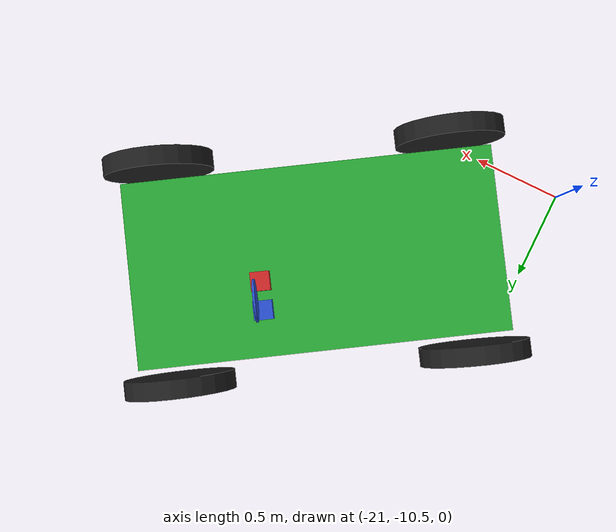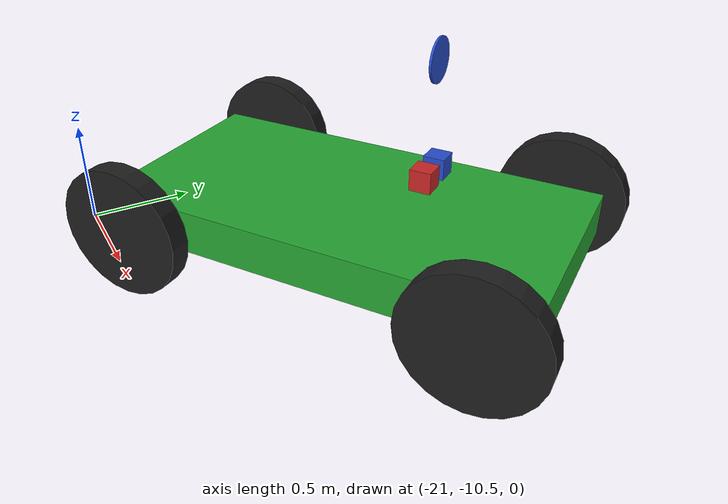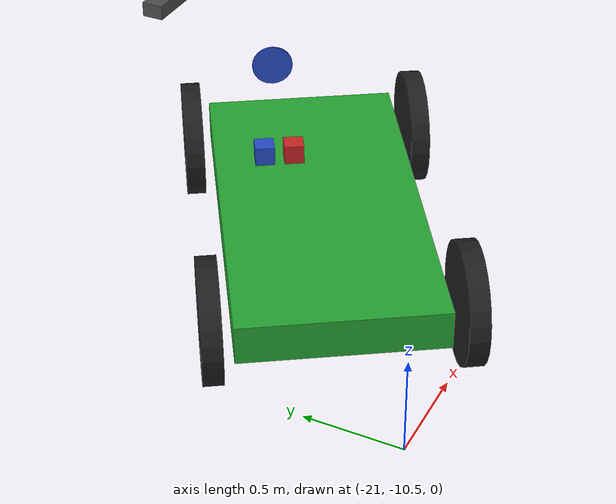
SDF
<sdf version="1.7">
 <world name="yolo_test_world">
  <model name="car">
   <link name="chassis">
    <pose>0 0 0.3 0 -0 0</pose>
    <collision name="collision"><geometry><box><size>2 1 0.2</size></box></geometry></collision>
    <visual name="visual">
     <geometry><box><size>2 1 0.2</size></box></geometry>
     <material>
      <script><uri>file://media/materials/scripts/gazebo.material</uri><name>Gazebo/Green</name></script>
     </material>
    </visual>
    <inertial>
     <inertia><ixx>1</ixx><ixy>0</ixy><ixz>0</ixz><iyy>1</iyy><iyz>0</iyz><izz>1</izz></inertia>
     <mass>1</mass>
    </inertial>
   </link>
   <link name="front_left_wheel">
    <pose>0.8 0.6 0.3 -0 1.5707 1.5707</pose>
    <collision name="collision">
     <geometry><cylinder><radius>0.3</radius><length>0.1</length></cylinder></geometry>
    </collision>
    <visual name="visual">
     <geometry><cylinder><radius>0.3</radius><length>0.1</length></cylinder></geometry>
     <material>
      <script><uri>file://media/materials/scripts/gazebo.material</uri><name>Gazebo/Black</name></script>
     </material>
    </visual>
    <inertial>
     <inertia><ixx>1</ixx><ixy>0</ixy><ixz>0</ixz><iyy>1</iyy><iyz>0</iyz><izz>1</izz></inertia>
     <mass>1</mass>
    </inertial>
   </link>
   <link name="front_right_wheel">
    <pose>0.8 -0.6 0.3 -0 1.5707 1.5707</pose>
    <collision name="collision">
     <geometry><cylinder><radius>0.3</radius><length>0.1</length></cylinder></geometry>
    </collision>
    <visual name="visual">
     <geometry><cylinder><radius>0.3</radius><length>0.1</length></cylinder></geometry>
     <material>
      <script><uri>file://media/materials/scripts/gazebo.material</uri><name>Gazebo/Black</name></script>
     </material>
    </visual>
    <inertial>
     <inertia><ixx>1</ixx><ixy>0</ixy><ixz>0</ixz><iyy>1</iyy><iyz>0</iyz><izz>1</izz></inertia>
     <mass>1</mass>
    </inertial>
   </link>
   <link name="back_right_wheel">
    <pose>-0.8 -0.6 0.3 -0 1.5707 1.5707</pose>
    <collision name="collision">
     <geometry><cylinder><radius>0.3</radius><length>0.1</length></cylinder></geometry>
    </collision>
    <visual name="visual">
     <geometry><cylinder><radius>0.3</radius><length>0.1</length></cylinder></geometry>
     <material>
      <script><uri>file://media/materials/scripts/gazebo.material</uri><name>Gazebo/Black</name></script>
     </material>
    </visual>
    <inertial>
     <inertia><ixx>1</ixx><ixy>0</ixy><ixz>0</ixz><iyy>1</iyy><iyz>0</iyz><izz>1</izz></inertia>
     <mass>1</mass>
    </inertial>
   </link>
   <link name="back_left_wheel">
    <pose>-0.8 0.6 0.3 -0 1.5707 1.5707</pose>
    <collision name="collision">
     <geometry><cylinder><radius>0.3</radius><length>0.1</length></cylinder></geometry>
    </collision>
    <visual name="visual">
     <geometry><cylinder><radius>0.3</radius><length>0.1</length></cylinder></geometry>
     <material>
      <script><uri>file://media/materials/scripts/gazebo.material</uri><name>Gazebo/Black</name></script>
     </material>
    </visual>
    <inertial>
     <inertia><ixx>1</ixx><ixy>0</ixy><ixz>0</ixz><iyy>1</iyy><iyz>0</iyz><izz>1</izz></inertia>
     <mass>1</mass>
    </inertial>
   </link>
   <link name="gas_pedal">
    <pose>0.3 0.1 0.5 0 -0 0</pose>
    <collision name="collision"><geometry><box><size>0.1 0.1 0.1</size></box></geometry></collision>
    <visual name="visual">
     <geometry><box><size>0.1 0.1 0.1</size></box></geometry>
     <material>
      <script><uri>file://media/materials/scripts/gazebo.material</uri><name>Gazebo/Red</name></script>
     </material>
    </visual>
    <inertial>
     <inertia><ixx>1</ixx><ixy>0</ixy><ixz>0</ixz><iyy>1</iyy><iyz>0</iyz><izz>1</izz></inertia>
     <mass>1</mass>
    </inertial>
   </link>
   <link name="brake_pedal">
    <pose>0.3 0.25 0.5 0 -0 0</pose>
    <collision name="collision"><geometry><box><size>0.1 0.1 0.1</size></box></geometry></collision>
    <visual name="visual">
     <geometry><box><size>0.1 0.1 0.1</size></box></geometry>
     <material>
      <script><uri>file://media/materials/scripts/gazebo.material</uri><name>Gazebo/Blue</name></script>
     </material>
    </visual>
    <inertial>
     <inertia><ixx>1</ixx><ixy>0</ixy><ixz>0</ixz><iyy>1</iyy><iyz>0</iyz><izz>1</izz></inertia>
     <mass>1</mass>
    </inertial>
   </link>
   <link name="steering_wheel">
    <pose>0.3 0.2 1 0 1.5707 0</pose>
    <collision name="collision">
     <geometry><cylinder><radius>0.1</radius><length>0.01</length></cylinder></geometry>
    </collision>
    <visual name="visual">
     <geometry><cylinder><radius>0.1</radius><length>0.01</length></cylinder></geometry>
     <material>
      <script><uri>file://media/materials/scripts/gazebo.material</uri><name>Gazebo/Blue</name></script>
     </material>
    </visual>
    <inertial>
     <inertia><ixx>1</ixx><ixy>0</ixy><ixz>0</ixz><iyy>1</iyy><iyz>0</iyz><izz>1</izz></inertia>
     <mass>1</mass>
    </inertial>
   </link>
   <joint name="gas_joint" type="prismatic">
    <parent>chassis</parent>
    <child>gas_pedal</child>
    <axis>
     <xyz expressed_in="__model__">1 0 0</xyz>
     <limit><lower>0</lower><upper>0.2</upper></limit>
     <dynamics><spring_reference>0</spring_reference><spring_stiffness>0</spring_stiffness></dynamics>
    </axis>
   </joint>
   <joint name="brake_joint" type="prismatic">
    <parent>chassis</parent>
    <child>brake_pedal</child>
    <axis>
     <xyz expressed_in="__model__">1 0 0</xyz>
     <limit><lower>0</lower><upper>0.2</upper></limit>
     <dynamics><spring_reference>0</spring_reference><spring_stiffness>0</spring_stiffness></dynamics>
    </axis>
   </joint>
   <joint name="steering_joint" type="revolute">
    <parent>chassis</parent>
    <child>steering_wheel</child>
    <axis>
     <xyz expressed_in="__model__">1 0 0</xyz>
     <limit><lower>-7.853</lower><upper>7.853</upper></limit>
     <dynamics><spring_reference>0</spring_reference><spring_stiffness>0</spring_stiffness></dynamics>
    </axis>
   </joint>
   <joint name="front_left_joint" type="revolute2">
    <parent>chassis</parent>
    <child>front_left_wheel</child>
    <axis>
     <xyz expressed_in="__model__">0 0 1</xyz>
     <limit><lower>2.40026e-07</lower><upper>2.40026e-07</upper></limit>
     <dynamics><spring_reference>0</spring_reference><spring_stiffness>0</spring_stiffness></dynamics>
    </axis>
    <axis2>
     <xyz expressed_in="__model__">0 1 0</xyz>
     <limit><upper>1e+16</upper><lower>-1e+16</lower></limit>
     <dynamics><spring_reference>0</spring_reference><spring_stiffness>0</spring_stiffness></dynamics>
    </axis2>
    <physics><ode><limit><cfm>0</cfm><erp>0.9</erp></limit></ode></physics>
   </joint>
   <joint name="front_right_joint" type="revolute2">
    <parent>chassis</parent>
    <child>front_right_wheel</child>
    <axis>
     <xyz expressed_in="__model__">0 0 1</xyz>
     <limit><lower>2.40026e-07</lower><upper>2.40026e-07</upper></limit>
     <dynamics><spring_reference>0</spring_reference><spring_stiffness>0</spring_stiffness></dynamics>
    </axis>
    <axis2>
     <xyz expressed_in="__model__">0 1 0</xyz>
     <limit><upper>1e+16</upper><lower>-1e+16</lower></limit>
     <dynamics><spring_reference>0</spring_reference><spring_stiffness>0</spring_stiffness></dynamics>
    </axis2>
    <physics><ode><limit><cfm>0</cfm><erp>0.9</erp></limit></ode></physics>
   </joint>
   <joint name="back_right_joint" type="revolute2">
    <parent>chassis</parent>
    <child>back_right_wheel</child>
    <axis>
     <xyz expressed_in="__model__">0 0 1</xyz>
     <limit><lower>0</lower><upper>0</upper></limit>
     <dynamics><spring_reference>0</spring_reference><spring_stiffness>0</spring_stiffness></dynamics>
    </axis>
    <axis2>
     <xyz expressed_in="__model__">0 1 0</xyz>
     <limit><upper>1e+16</upper><lower>-1e+16</lower></limit>
     <dynamics><spring_reference>0</spring_reference><spring_stiffness>0</spring_stiffness></dynamics>
    </axis2>
    <physics><ode><limit><cfm>0</cfm><erp>0.9</erp></limit></ode></physics>
   </joint>
   <joint name="back_left_joint" type="revolute2">
    <parent>chassis</parent>
    <child>back_left_wheel</child>
    <axis>
     <xyz expressed_in="__model__">0 0 1</xyz>
     <limit><lower>0</lower><upper>0</upper></limit>
     <dynamics><spring_reference>0</spring_reference><spring_stiffness>0</spring_stiffness></dynamics>
    </axis>
    <axis2>
     <xyz expressed_in="__model__">0 1 0</xyz>
     <limit><upper>1e+16</upper><lower>-1e+16</lower></limit>
     <dynamics><spring_reference>0</spring_reference><spring_stiffness>0</spring_stiffness></dynamics>
    </axis2>
    <physics><ode><limit><cfm>0</cfm><erp>0.9</erp></limit></ode></physics>
   </joint>
   <plugin name="vehicle" filename="libVehiclePlugin.so">
    <front_left>front_left_joint</front_left>
    <front_right>front_right_joint</front_right>
    <back_left>back_left_joint</back_left>
    <back_right>back_right_joint</back_right>
    <gas>gas_joint</gas>
    <brake>brake_joint</brake>
    <steering>steering_joint</steering>
    <front_power>10</front_power>
    <rear_power>10</rear_power>
    <tire_angle_range>0.5</tire_angle_range>
    <max_speed>10</max_speed>
    <aero_load>0.1</aero_load>
   </plugin>
   <pose>-19.906 -9.55458 8e-06 -2e-06 6e-06 0.564851</pose>
  </model>
  <model name="asphalt_plane">
   <static>1</static>
   <link name="link">
    <collision name="collision"><geometry><box><size>20 20 0.1</size></box></geometry></collision>
    <visual name="visual">
     <cast_shadows>0</cast_shadows>
     <geometry><box><size>20 20 0.1</size></box></geometry>
     <material>
      <script>
       <uri>model://asphalt_plane/materials/scripts</uri>
       <uri>model://asphalt_plane/materials/textures</uri>
       <name>vrc/asphalt</name>
      </script>
     </material>
    </visual>
   </link>
   <pose>-7.83882 2.61958 0 0 -0 0</pose>
  </model>
 </world>
</sdf>
